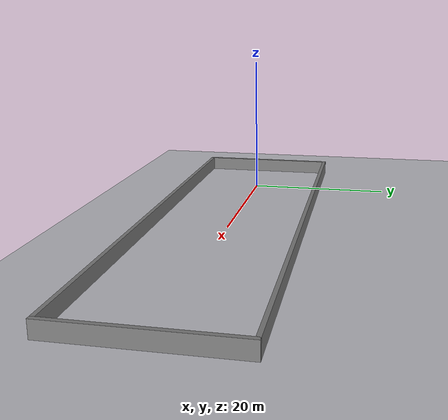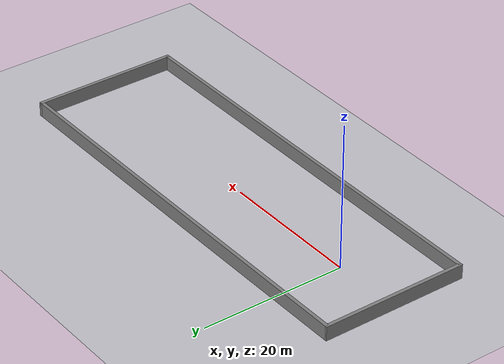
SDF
<sdf version="1.9">
 <world name="map1">
  <physics name="4ms" type="ode">
   <max_step_size>0.004</max_step_size>
   <real_time_factor>1.0</real_time_factor>
  </physics>
  <gravity>0 0 -9.80665</gravity>
  <magnetic_field>6e-06 2.3e-05 -4.2e-05</magnetic_field>
  <atmosphere type="adiabatic"/>
  <plugin filename="gz-sim-physics-system" name="gz::sim::systems::Physics"/>
  <plugin filename="gz-sim-user-commands-system" name="gz::sim::systems::UserCommands"/>
  <plugin filename="gz-sim-scene-broadcaster-system" name="gz::sim::systems::SceneBroadcaster"/>
  <plugin filename="gz-sim-contact-system" name="gz::sim::systems::Contact"/>
  <plugin filename="gz-sim-sensors-system" name="gz::sim::systems::Sensors">
   <render_engine>ogre2</render_engine>
  </plugin>
  <plugin filename="gz-sim-imu-system" name="gz::sim::systems::Imu"/>
  <plugin filename="gz-sim-magnetometer-system" name="gz::sim::systems::Magnetometer"/>
  <plugin filename="gz-sim-air-pressure-system" name="gz::sim::systems::AirPressure"/>
  <light type="directional" name="sun">
   <pose>0 0 10 0 0 0</pose>
   <diffuse>0.95 0.95 0.95 1</diffuse>
   <specular>0.25 0.25 0.25 1</specular>
   <attenuation>
    <range>1000</range>
    <constant>0.9</constant>
    <linear>0.01</linear>
    <quadratic>0.001</quadratic>
   </attenuation>
   <direction>0 0 -1</direction>
  </light>
  <scene>
   <grid>true</grid>
   <ambient>0.4 0.4 0.4 1</ambient>
   <background>0.7 0.7 0.7 1</background>
   <shadows>true</shadows>
  </scene>
  <spherical_coordinates>
   <surface_model>EARTH_WGS84</surface_model>
   <world_frame_orientation>ENU</world_frame_orientation>
   <latitude_deg>47.397971057728974</latitude_deg>
   <longitude_deg>8.546163739800146</longitude_deg>
   <elevation>0</elevation>
  </spherical_coordinates>
  <model name="ground_plane">
   <static>true</static>
   <link name="link">
    <collision name="collision">
     <geometry><plane><normal>0 0 1</normal><size>200 200</size></plane></geometry>
    </collision>
    <visual name="visual">
     <geometry><plane><normal>0 0 1</normal><size>200 200</size></plane></geometry>
     <material><ambient>0.75 0.75 0.78 1</ambient><diffuse>0.75 0.75 0.78 1</diffuse></material>
    </visual>
   </link>
  </model>
  <model name="wall_left">
   <static>true</static>
   <pose>20 10 1 0 0 0</pose>
   <link name="link">
    <collision name="c"><geometry><box><size>60 0.5 2</size></box></geometry></collision>
    <visual name="v">
     <geometry><box><size>60 0.5 2</size></box></geometry>
     <material><ambient>0.5 0.5 0.5 1</ambient><diffuse>0.5 0.5 0.5 1</diffuse></material>
    </visual>
   </link>
  </model>
  <model name="wall_right">
   <static>true</static>
   <pose>20 -10 1 0 0 0</pose>
   <link name="link">
    <collision name="c"><geometry><box><size>60 0.5 2</size></box></geometry></collision>
    <visual name="v">
     <geometry><box><size>60 0.5 2</size></box></geometry>
     <material><ambient>0.5 0.5 0.5 1</ambient><diffuse>0.5 0.5 0.5 1</diffuse></material>
    </visual>
   </link>
  </model>
  <model name="wall_front">
   <static>true</static>
   <pose>-10 0 1 0 0 0</pose>
   <link name="link">
    <collision name="c"><geometry><box><size>0.5 20.5 2</size></box></geometry></collision>
    <visual name="v">
     <geometry><box><size>0.5 20.5 2</size></box></geometry>
     <material><ambient>0.5 0.5 0.5 1</ambient><diffuse>0.5 0.5 0.5 1</diffuse></material>
    </visual>
   </link>
  </model>
  <model name="wall_back">
   <static>true</static>
   <pose>50 0 1 0 0 0</pose>
   <link name="link">
    <collision name="c"><geometry><box><size>0.5 20.5 2</size></box></geometry></collision>
    <visual name="v">
     <geometry><box><size>0.5 20.5 2</size></box></geometry>
     <material><ambient>0.5 0.5 0.5 1</ambient><diffuse>0.5 0.5 0.5 1</diffuse></material>
    </visual>
   </link>
  </model>
 </world>
</sdf>
